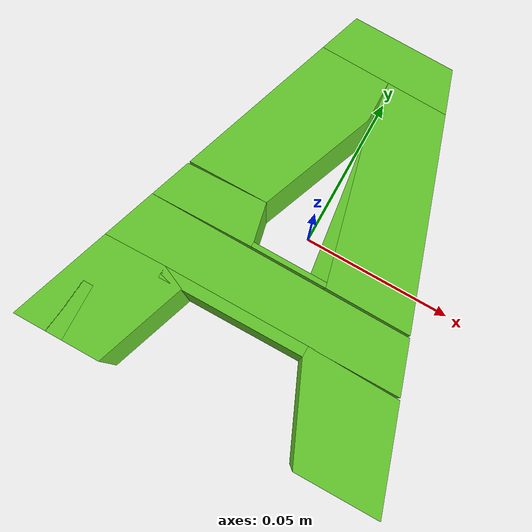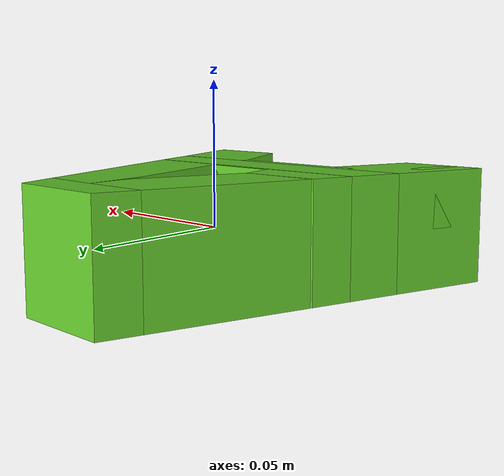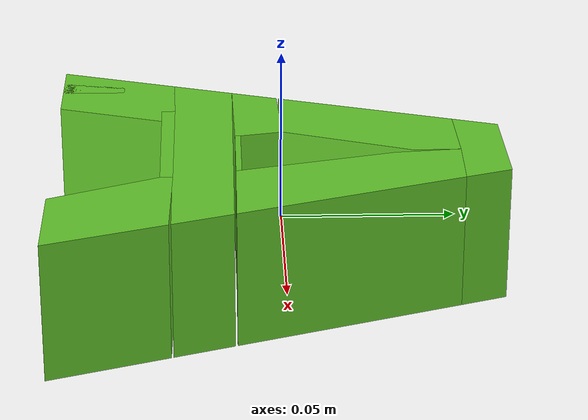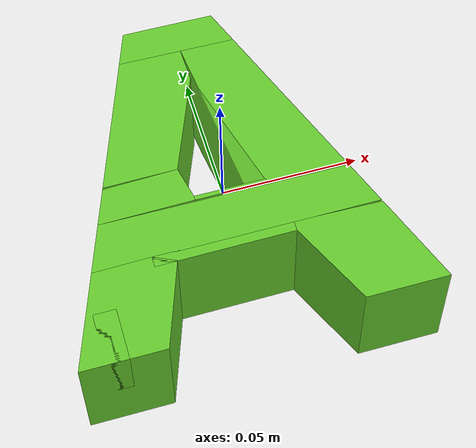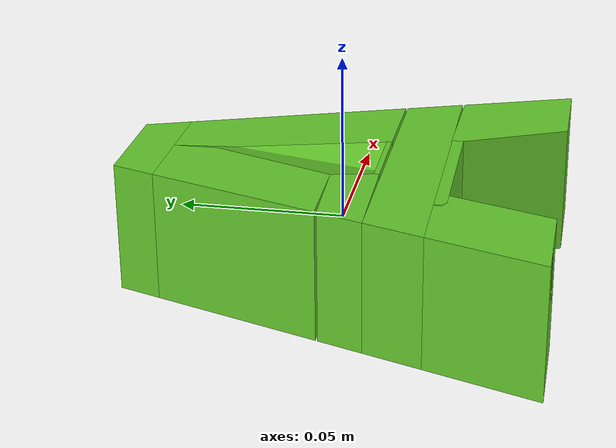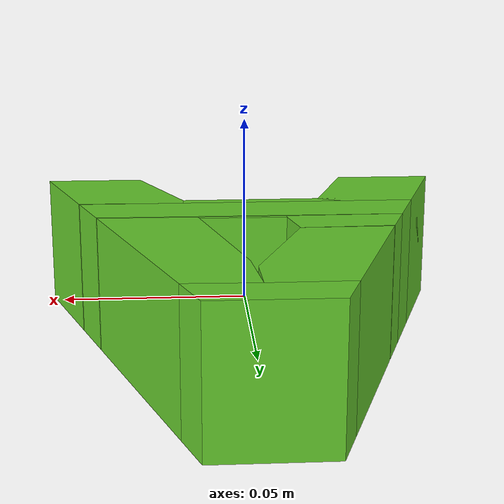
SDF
<?xml version='1.0' encoding='UTF-8'?>
<!-- This SDF was autogenerated by obj_to_drake_sdf.py -->
<sdf version="1.7">
  <model name="smaller_a">
    <link name="smaller_a">
      <inertial>
        <pose>0 0 0 0 0 0</pose>
        <mass>0.2</mass>
        <inertia>
          <ixx>0.00027174218</ixx>
          <iyy>0.0002002763</iyy>
          <izz>0.00041868514</izz>
          <ixy>1.8564733e-07</ixy>
          <ixz>-3.2254869e-23</ixz>
          <iyz>-7.5783988e-23</iyz>
        </inertia>
      </inertial>
      <visual name="convex_0">
        <pose>0 0 0 0 0 0</pose>
        <geometry>
          <mesh>
            <uri>smaller_a_convex_0.obj</uri>
          </mesh>
        </geometry>
        <material>
          <diffuse>0.39215686274509803 0.7843137254901961 0.17254901960784313 1</diffuse>
        </material>
      </visual>
      <collision name="convex_0_volume">
        <pose>0 0 0 0 0 0</pose>
        <geometry>
          <mesh>
            <uri>smaller_a_convex_0.obj</uri>
          </mesh>
        </geometry>
        <drake:proximity_properties xmlns:drake="uri:drake">
          <drake:compliant_hydroelastic/>
          <drake:hydroelastic_modulus> 3.0e7 </drake:hydroelastic_modulus>
          <drake:mesh_resolution_hint> 0.02 </drake:mesh_resolution_hint>
          <drake:hunt_crossley_dissipation>10</drake:hunt_crossley_dissipation>
          <drake:mu_dynamic>0.5</drake:mu_dynamic>
        </drake:proximity_properties>
      </collision>
      <visual name="convex_1">
        <pose>0 0 0 0 0 0</pose>
        <geometry>
          <mesh>
            <uri>smaller_a_convex_1.obj</uri>
          </mesh>
        </geometry>
        <material>
          <diffuse>0.39215686274509803 0.7843137254901961 0.17254901960784313 1</diffuse>
        </material>
      </visual>
      <collision name="convex_1_volume">
        <pose>0 0 0 0 0 0</pose>
        <geometry>
          <mesh>
            <uri>smaller_a_convex_1.obj</uri>
          </mesh>
        </geometry>
        <drake:proximity_properties xmlns:drake="uri:drake">
          <drake:compliant_hydroelastic/>
          <drake:hydroelastic_modulus> 3.0e7 </drake:hydroelastic_modulus>
          <drake:mesh_resolution_hint> 0.02 </drake:mesh_resolution_hint>
          <drake:hunt_crossley_dissipation>10</drake:hunt_crossley_dissipation>
          <drake:mu_dynamic>0.5</drake:mu_dynamic>
        </drake:proximity_properties>
      </collision>
      <visual name="convex_2">
        <pose>0 0 0 0 0 0</pose>
        <geometry>
          <mesh>
            <uri>smaller_a_convex_2.obj</uri>
          </mesh>
        </geometry>
        <material>
          <diffuse>0.39215686274509803 0.7843137254901961 0.17254901960784313 1</diffuse>
        </material>
      </visual>
      <collision name="convex_2_volume">
        <pose>0 0 0 0 0 0</pose>
        <geometry>
          <mesh>
            <uri>smaller_a_convex_2.obj</uri>
          </mesh>
        </geometry>
        <drake:proximity_properties xmlns:drake="uri:drake">
          <drake:compliant_hydroelastic/>
          <drake:hydroelastic_modulus> 3.0e7 </drake:hydroelastic_modulus>
          <drake:mesh_resolution_hint> 0.02 </drake:mesh_resolution_hint>
          <drake:hunt_crossley_dissipation>10</drake:hunt_crossley_dissipation>
          <drake:mu_dynamic>0.5</drake:mu_dynamic>
        </drake:proximity_properties>
      </collision>
      <visual name="convex_3">
        <pose>0 0 0 0 0 0</pose>
        <geometry>
          <mesh>
            <uri>smaller_a_convex_3.obj</uri>
          </mesh>
        </geometry>
        <material>
          <diffuse>0.39215686274509803 0.7843137254901961 0.17254901960784313 1</diffuse>
        </material>
      </visual>
      <collision name="convex_3_volume">
        <pose>0 0 0 0 0 0</pose>
        <geometry>
          <mesh>
            <uri>smaller_a_convex_3.obj</uri>
          </mesh>
        </geometry>
        <drake:proximity_properties xmlns:drake="uri:drake">
          <drake:compliant_hydroelastic/>
          <drake:hydroelastic_modulus> 3.0e7 </drake:hydroelastic_modulus>
          <drake:mesh_resolution_hint> 0.02 </drake:mesh_resolution_hint>
          <drake:hunt_crossley_dissipation>10</drake:hunt_crossley_dissipation>
          <drake:mu_dynamic>0.5</drake:mu_dynamic>
        </drake:proximity_properties>
      </collision>
      <visual name="convex_4">
        <pose>0 0 0 0 0 0</pose>
        <geometry>
          <mesh>
            <uri>smaller_a_convex_4.obj</uri>
          </mesh>
        </geometry>
        <material>
          <diffuse>0.39215686274509803 0.7843137254901961 0.17254901960784313 1</diffuse>
        </material>
      </visual>
      <collision name="convex_4_volume">
        <pose>0 0 0 0 0 0</pose>
        <geometry>
          <mesh>
            <uri>smaller_a_convex_4.obj</uri>
          </mesh>
        </geometry>
        <drake:proximity_properties xmlns:drake="uri:drake">
          <drake:compliant_hydroelastic/>
          <drake:hydroelastic_modulus> 3.0e7 </drake:hydroelastic_modulus>
          <drake:mesh_resolution_hint> 0.02 </drake:mesh_resolution_hint>
          <drake:hunt_crossley_dissipation>10</drake:hunt_crossley_dissipation>
          <drake:mu_dynamic>0.5</drake:mu_dynamic>
        </drake:proximity_properties>
      </collision>
      <visual name="convex_5">
        <pose>0 0 0 0 0 0</pose>
        <geometry>
          <mesh>
            <uri>smaller_a_convex_5.obj</uri>
          </mesh>
        </geometry>
        <material>
          <diffuse>0.39215686274509803 0.7843137254901961 0.17254901960784313 1</diffuse>
        </material>
      </visual>
      <collision name="convex_5_volume">
        <pose>0 0 0 0 0 0</pose>
        <geometry>
          <mesh>
            <uri>smaller_a_convex_5.obj</uri>
          </mesh>
        </geometry>
        <drake:proximity_properties xmlns:drake="uri:drake">
          <drake:compliant_hydroelastic/>
          <drake:hydroelastic_modulus> 3.0e7 </drake:hydroelastic_modulus>
          <drake:mesh_resolution_hint> 0.02 </drake:mesh_resolution_hint>
          <drake:hunt_crossley_dissipation>10</drake:hunt_crossley_dissipation>
          <drake:mu_dynamic>0.5</drake:mu_dynamic>
        </drake:proximity_properties>
      </collision>
      <visual name="convex_6">
        <pose>0 0 0 0 0 0</pose>
        <geometry>
          <mesh>
            <uri>smaller_a_convex_6.obj</uri>
          </mesh>
        </geometry>
        <material>
          <diffuse>0.39215686274509803 0.7843137254901961 0.17254901960784313 1</diffuse>
        </material>
      </visual>
      <collision name="convex_6_volume">
        <pose>0 0 0 0 0 0</pose>
        <geometry>
          <mesh>
            <uri>smaller_a_convex_6.obj</uri>
          </mesh>
        </geometry>
        <drake:proximity_properties xmlns:drake="uri:drake">
          <drake:compliant_hydroelastic/>
          <drake:hydroelastic_modulus> 3.0e7 </drake:hydroelastic_modulus>
          <drake:mesh_resolution_hint> 0.02 </drake:mesh_resolution_hint>
          <drake:hunt_crossley_dissipation>10</drake:hunt_crossley_dissipation>
          <drake:mu_dynamic>0.5</drake:mu_dynamic>
        </drake:proximity_properties>
      </collision>
      <visual name="convex_7">
        <pose>0 0 0 0 0 0</pose>
        <geometry>
          <mesh>
            <uri>smaller_a_convex_7.obj</uri>
          </mesh>
        </geometry>
        <material>
          <diffuse>0.39215686274509803 0.7843137254901961 0.17254901960784313 1</diffuse>
        </material>
      </visual>
      <collision name="convex_7_volume">
        <pose>0 0 0 0 0 0</pose>
        <geometry>
          <mesh>
            <uri>smaller_a_convex_7.obj</uri>
          </mesh>
        </geometry>
        <drake:proximity_properties xmlns:drake="uri:drake">
          <drake:compliant_hydroelastic/>
          <drake:hydroelastic_modulus> 3.0e7 </drake:hydroelastic_modulus>
          <drake:mesh_resolution_hint> 0.02 </drake:mesh_resolution_hint>
          <drake:hunt_crossley_dissipation>10</drake:hunt_crossley_dissipation>
          <drake:mu_dynamic>0.5</drake:mu_dynamic>
        </drake:proximity_properties>
      </collision>
      <visual name="convex_8">
        <pose>0 0 0 0 0 0</pose>
        <geometry>
          <mesh>
            <uri>smaller_a_convex_8.obj</uri>
          </mesh>
        </geometry>
        <material>
          <diffuse>0.39215686274509803 0.7843137254901961 0.17254901960784313 1</diffuse>
        </material>
      </visual>
      <collision name="convex_8_volume">
        <pose>0 0 0 0 0 0</pose>
        <geometry>
          <mesh>
            <uri>smaller_a_convex_8.obj</uri>
          </mesh>
        </geometry>
        <drake:proximity_properties xmlns:drake="uri:drake">
          <drake:compliant_hydroelastic/>
          <drake:hydroelastic_modulus> 3.0e7 </drake:hydroelastic_modulus>
          <drake:mesh_resolution_hint> 0.02 </drake:mesh_resolution_hint>
          <drake:hunt_crossley_dissipation>10</drake:hunt_crossley_dissipation>
          <drake:mu_dynamic>0.5</drake:mu_dynamic>
        </drake:proximity_properties>
      </collision>
      <visual name="convex_9">
        <pose>0 0 0 0 0 0</pose>
        <geometry>
          <mesh>
            <uri>smaller_a_convex_9.obj</uri>
          </mesh>
        </geometry>
        <material>
          <diffuse>0.39215686274509803 0.7843137254901961 0.17254901960784313 1</diffuse>
        </material>
      </visual>
      <collision name="convex_9_volume">
        <pose>0 0 0 0 0 0</pose>
        <geometry>
          <mesh>
            <uri>smaller_a_convex_9.obj</uri>
          </mesh>
        </geometry>
        <drake:proximity_properties xmlns:drake="uri:drake">
          <drake:compliant_hydroelastic/>
          <drake:hydroelastic_modulus> 3.0e7 </drake:hydroelastic_modulus>
          <drake:mesh_resolution_hint> 0.02 </drake:mesh_resolution_hint>
          <drake:hunt_crossley_dissipation>10</drake:hunt_crossley_dissipation>
          <drake:mu_dynamic>0.5</drake:mu_dynamic>
        </drake:proximity_properties>
      </collision>
    </link>
  </model>
</sdf>
